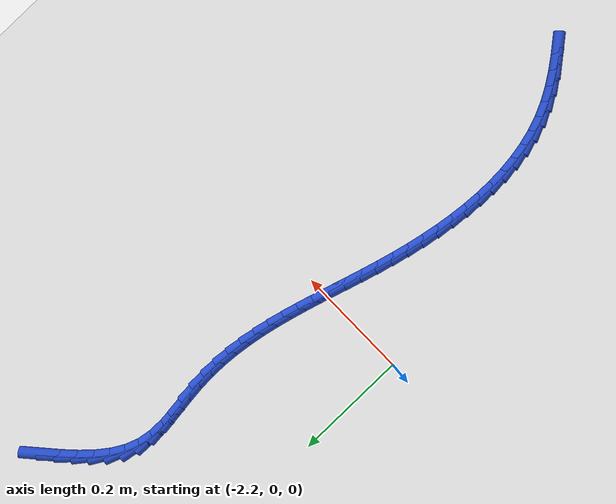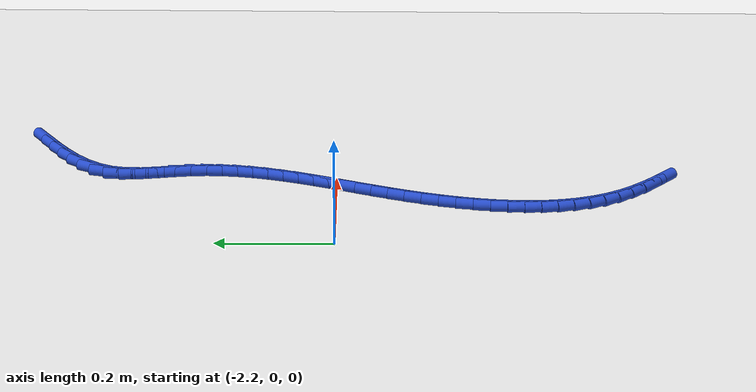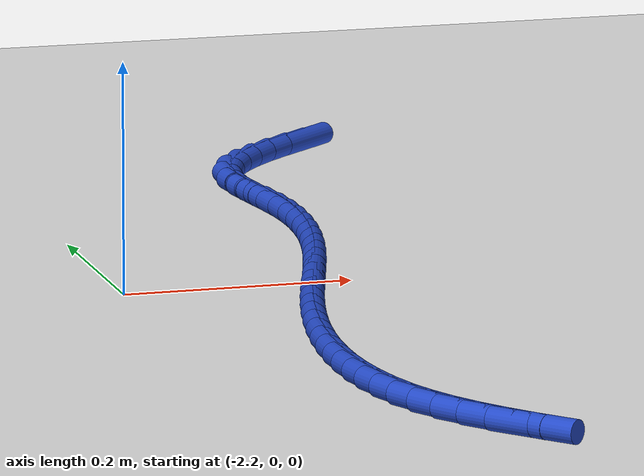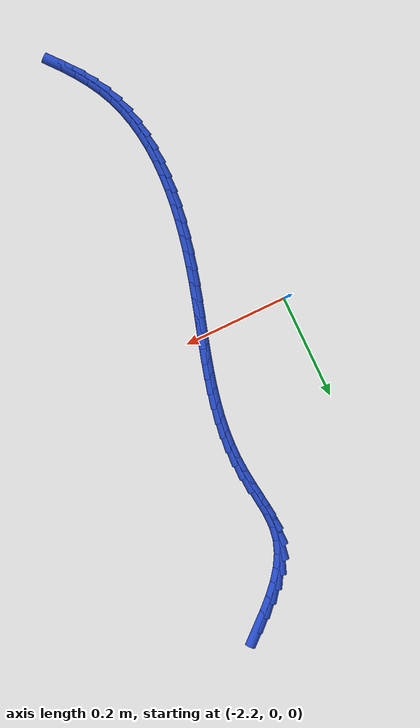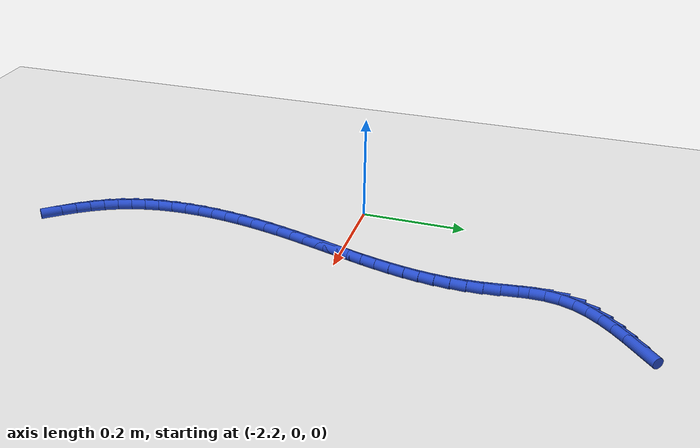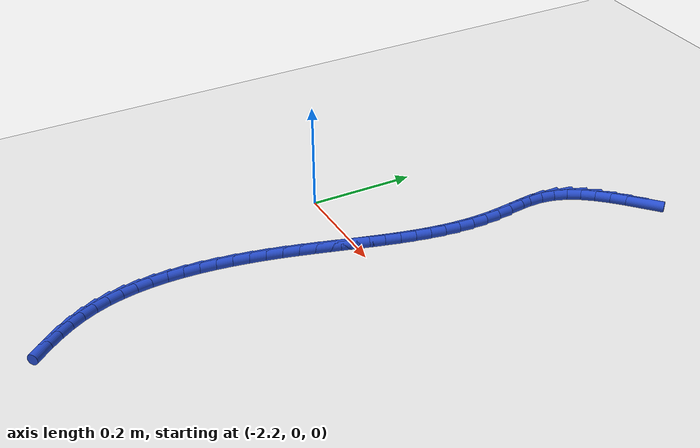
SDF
<sdf version="1.6">
 <world name="default">
  <model name="ground_plane">
   <static>1</static>
   <link name="link">
    <collision name="collision">
     <geometry><plane><normal>0 0 1</normal><size>100 100</size></plane></geometry>
     <surface><friction><ode><mu>100</mu><mu2>50</mu2></ode></friction></surface>
    </collision>
    <visual name="visual">
     <cast_shadows>0</cast_shadows>
     <geometry><plane><normal>0 0 1</normal><size>100 100</size></plane></geometry>
     <material>
      <script><uri>file://media/materials/scripts/gazebo.material</uri><name>Gazebo/WhiteGlow</name></script>
     </material>
    </visual>
   </link>
  </model>
  <model name="line">
   <link name="link_101">
    <pose>-1.896144496180895 0.5289718271721537 0.01 0 1.57 0.7220168724286427</pose>
    <collision name="collision">
     <geometry><cylinder><radius>0.01</radius><length>0.08</length></cylinder></geometry>
    </collision>
    <visual name="visual">
     <material>
      <script><name>Gazebo/Blue</name><uri>file://media/materials/scripts/gazebo.material</uri></script>
     </material>
     <geometry><cylinder><radius>0.01</radius><length>0.08</length></cylinder></geometry>
    </visual>
   </link>
   <link name="link_102">
    <pose>-1.9187975439363938 0.5090225888469819 0.01 0 1.57 0.7618885323626686</pose>
    <collision name="collision">
     <geometry><cylinder><radius>0.01</radius><length>0.08</length></cylinder></geometry>
    </collision>
    <visual name="visual">
     <material>
      <script><name>Gazebo/Blue</name><uri>file://media/materials/scripts/gazebo.material</uri></script>
     </material>
     <geometry><cylinder><radius>0.01</radius><length>0.08</length></cylinder></geometry>
    </visual>
   </link>
   <link name="link_103">
    <pose>-1.9401265800962153 0.488673568966141 0.01 0 1.57 0.8273645722936976</pose>
    <collision name="collision">
     <geometry><cylinder><radius>0.01</radius><length>0.08</length></cylinder></geometry>
    </collision>
    <visual name="visual">
     <material>
      <script><name>Gazebo/Blue</name><uri>file://media/materials/scripts/gazebo.material</uri></script>
     </material>
     <geometry><cylinder><radius>0.01</radius><length>0.08</length></cylinder></geometry>
    </visual>
   </link>
   <link name="link_104">
    <pose>-1.9594284124826273 0.4676796762458361 0.01 0 1.57 0.9226746576085141</pose>
    <collision name="collision">
     <geometry><cylinder><radius>0.01</radius><length>0.08</length></cylinder></geometry>
    </collision>
    <visual name="visual">
     <material>
      <script><name>Gazebo/Blue</name><uri>file://media/materials/scripts/gazebo.material</uri></script>
     </material>
     <geometry><cylinder><radius>0.01</radius><length>0.08</length></cylinder></geometry>
    </visual>
   </link>
   <link name="link_105">
    <pose>-1.975999848917899 0.4457958194022733 0.01 0 1.57 1.0521683185473627</pose>
    <collision name="collision">
     <geometry><cylinder><radius>0.01</radius><length>0.08</length></cylinder></geometry>
    </collision>
    <visual name="visual">
     <material>
      <script><name>Gazebo/Blue</name><uri>file://media/materials/scripts/gazebo.material</uri></script>
     </material>
     <geometry><cylinder><radius>0.01</radius><length>0.08</length></cylinder></geometry>
    </visual>
   </link>
   <link name="link_106">
    <pose>-1.9891376972242967 0.42277690715165667 0.01 0 1.57 1.2173750922639242</pose>
    <collision name="collision">
     <geometry><cylinder><radius>0.01</radius><length>0.08</length></cylinder></geometry>
    </collision>
    <visual name="visual">
     <material>
      <script><name>Gazebo/Blue</name><uri>file://media/materials/scripts/gazebo.material</uri></script>
     </material>
     <geometry><cylinder><radius>0.01</radius><length>0.08</length></cylinder></geometry>
    </visual>
   </link>
   <link name="link_107">
    <pose>-1.9981387652240898 0.3983778482101923 0.01 0 1.57 1.4094934654460418</pose>
    <collision name="collision">
     <geometry><cylinder><radius>0.01</radius><length>0.08</length></cylinder></geometry>
    </collision>
    <visual name="visual">
     <material>
      <script><name>Gazebo/Blue</name><uri>file://media/materials/scripts/gazebo.material</uri></script>
     </material>
     <geometry><cylinder><radius>0.01</radius><length>0.08</length></cylinder></geometry>
    </visual>
   </link>
   <link name="link_108">
    <pose>-2.00236973550002 0.372375756408507 0.01 0 1.57 1.5700115552759744</pose>
    <collision name="collision">
     <geometry><cylinder><radius>0.01</radius><length>0.08</length></cylinder></geometry>
    </collision>
    <visual name="visual">
     <material>
      <script><name>Gazebo/Blue</name><uri>file://media/materials/scripts/gazebo.material</uri></script>
     </material>
     <geometry><cylinder><radius>0.01</radius><length>0.08</length></cylinder></geometry>
    </visual>
   </link>
   <link name="link_109">
    <pose>-2.0023912763688068 0.34492717571281806 0.01 0 1.57 -1.4786694007381977</pose>
    <collision name="collision">
     <geometry><cylinder><radius>0.01</radius><length>0.08</length></cylinder></geometry>
    </collision>
    <visual name="visual">
     <material>
      <script><name>Gazebo/Blue</name><uri>file://media/materials/scripts/gazebo.material</uri></script>
     </material>
     <geometry><cylinder><radius>0.01</radius><length>0.08</length></cylinder></geometry>
    </visual>
   </link>
   <link name="link_110">
    <pose>-1.9997655726006311 0.31650691647470813 0.01 0 1.57 -1.4441821262488481</pose>
    <collision name="collision">
     <geometry><cylinder><radius>0.01</radius><length>0.08</length></cylinder></geometry>
    </collision>
    <visual name="visual">
     <material>
      <script><name>Gazebo/Blue</name><uri>file://media/materials/scripts/gazebo.material</uri></script>
     </material>
     <geometry><cylinder><radius>0.01</radius><length>0.08</length></cylinder></geometry>
    </visual>
   </link>
   <link name="link_111">
    <pose>-1.996085816626342 0.28759964279908207 0.01 0 1.57 -1.4625806967025232</pose>
    <collision name="collision">
     <geometry><cylinder><radius>0.01</radius><length>0.08</length></cylinder></geometry>
    </collision>
    <visual name="visual">
     <material>
      <script><name>Gazebo/Blue</name><uri>file://media/materials/scripts/gazebo.material</uri></script>
     </material>
     <geometry><cylinder><radius>0.01</radius><length>0.08</length></cylinder></geometry>
    </visual>
   </link>
   <link name="link_112">
    <pose>-1.9929450694700788 0.2586899784878984 0.01 0 1.57 -1.5225483574651293</pose>
    <collision name="collision">
     <geometry><cylinder><radius>0.01</radius><length>0.08</length></cylinder></geometry>
    </collision>
    <visual name="visual">
     <material>
      <script><name>Gazebo/Blue</name><uri>file://media/materials/scripts/gazebo.material</uri></script>
     </material>
     <geometry><cylinder><radius>0.01</radius><length>0.08</length></cylinder></geometry>
    </visual>
   </link>
   <link name="link_113">
    <pose>-1.991566967444918 0.23014924335575432 0.01 0 1.57 1.5554933771821096</pose>
    <collision name="collision">
     <geometry><cylinder><radius>0.01</radius><length>0.08</length></cylinder></geometry>
    </collision>
    <visual name="visual">
     <material>
      <script><name>Gazebo/Blue</name><uri>file://media/materials/scripts/gazebo.material</uri></script>
     </material>
     <geometry><cylinder><radius>0.01</radius><length>0.08</length></cylinder></geometry>
    </visual>
   </link>
   <link name="link_114">
    <pose>-1.9919979556431835 0.2019877081179235 0.01 0 1.57 1.4972125847674065</pose>
    <collision name="collision">
     <geometry><cylinder><radius>0.01</radius><length>0.08</length></cylinder></geometry>
    </collision>
    <visual name="visual">
     <material>
      <script><name>Gazebo/Blue</name><uri>file://media/materials/scripts/gazebo.material</uri></script>
     </material>
     <geometry><cylinder><radius>0.01</radius><length>0.08</length></cylinder></geometry>
    </visual>
   </link>
   <link name="link_115">
    <pose>-1.994050514211068 0.17414388553601304 0.01 0 1.57 1.44507963513674</pose>
    <collision name="collision">
     <geometry><cylinder><radius>0.01</radius><length>0.08</length></cylinder></geometry>
    </collision>
    <visual name="visual">
     <material>
      <script><name>Gazebo/Blue</name><uri>file://media/materials/scripts/gazebo.material</uri></script>
     </material>
     <geometry><cylinder><radius>0.01</radius><length>0.08</length></cylinder></geometry>
    </visual>
   </link>
   <link name="link_116">
    <pose>-1.99753712329476 0.14655628837162982 0.01 0 1.57 1.3996983568540962</pose>
    <collision name="collision">
     <geometry><cylinder><radius>0.01</radius><length>0.08</length></cylinder></geometry>
    </collision>
    <visual name="visual">
     <material>
      <script><name>Gazebo/Blue</name><uri>file://media/materials/scripts/gazebo.material</uri></script>
     </material>
     <geometry><cylinder><radius>0.01</radius><length>0.08</length></cylinder></geometry>
    </visual>
   </link>
   <link name="link_117">
    <pose>-2.0022702630404523 0.119163429386381 0.01 0 1.57 1.3614290506403983</pose>
    <collision name="collision">
     <geometry><cylinder><radius>0.01</radius><length>0.08</length></cylinder></geometry>
    </collision>
    <visual name="visual">
     <material>
      <script><name>Gazebo/Blue</name><uri>file://media/materials/scripts/gazebo.material</uri></script>
     </material>
     <geometry><cylinder><radius>0.01</radius><length>0.08</length></cylinder></geometry>
    </visual>
   </link>
   <link name="link_118">
    <pose>-2.0080624135943346 0.09190382134187361 0.01 0 1.57 1.3304381586374678</pose>
    <collision name="collision">
     <geometry><cylinder><radius>0.01</radius><length>0.08</length></cylinder></geometry>
    </collision>
    <visual name="visual">
     <material>
      <script><name>Gazebo/Blue</name><uri>file://media/materials/scripts/gazebo.material</uri></script>
     </material>
     <geometry><cylinder><radius>0.01</radius><length>0.08</length></cylinder></geometry>
    </visual>
   </link>
   <link name="link_119">
    <pose>-2.014726055102598 0.06471597699971472 0.01 0 1.57 1.3067529145055927</pose>
    <collision name="collision">
     <geometry><cylinder><radius>0.01</radius><length>0.08</length></cylinder></geometry>
    </collision>
    <visual name="visual">
     <material>
      <script><name>Gazebo/Blue</name><uri>file://media/materials/scripts/gazebo.material</uri></script>
     </material>
     <geometry><cylinder><radius>0.01</radius><length>0.08</length></cylinder></geometry>
    </visual>
   </link>
   <link name="link_120">
    <pose>-2.0220736677114326 0.037538409121511705 0.01 0 1.57 1.2903109588962494</pose>
    <collision name="collision">
     <geometry><cylinder><radius>0.01</radius><length>0.08</length></cylinder></geometry>
    </collision>
    <visual name="visual">
     <material>
      <script><name>Gazebo/Blue</name><uri>file://media/materials/scripts/gazebo.material</uri></script>
     </material>
     <geometry><cylinder><radius>0.01</radius><length>0.08</length></cylinder></geometry>
    </visual>
   </link>
   <link name="link_121">
    <pose>-2.0299177315670307 0.010309630468870935 0.01 0 1.57 1.280999554567115</pose>
    <collision name="collision">
     <geometry><cylinder><radius>0.01</radius><length>0.08</length></cylinder></geometry>
    </collision>
    <visual name="visual">
     <material>
      <script><name>Gazebo/Blue</name><uri>file://media/materials/scripts/gazebo.material</uri></script>
     </material>
     <geometry><cylinder><radius>0.01</radius><length>0.08</length></cylinder></geometry>
    </visual>
   </link>
   <link name="link_122">
    <pose>-2.0380707268155813 -0.017031846196600246 0.01 0 1.57 1.2786825478382515</pose>
    <collision name="collision">
     <geometry><cylinder><radius>0.01</radius><length>0.08</length></cylinder></geometry>
    </collision>
    <visual name="visual">
     <material>
      <script><name>Gazebo/Blue</name><uri>file://media/materials/scripts/gazebo.material</uri></script>
     </material>
     <geometry><cylinder><radius>0.01</radius><length>0.08</length></cylinder></geometry>
    </visual>
   </link>
   <link name="link_123">
    <pose>-2.046345133603277 -0.04454750811329473 0.01 0 1.57 1.2832152834538741</pose>
    <collision name="collision">
     <geometry><cylinder><radius>0.01</radius><length>0.08</length></cylinder></geometry>
    </collision>
    <visual name="visual">
     <material>
      <script><name>Gazebo/Blue</name><uri>file://media/materials/scripts/gazebo.material</uri></script>
     </material>
     <geometry><cylinder><radius>0.01</radius><length>0.08</length></cylinder></geometry>
    </visual>
   </link>
   <link name="link_124">
    <pose>-2.0545534320763075 -0.0722988425196055 0.01 0 1.57 1.2944486016120647</pose>
    <collision name="collision">
     <geometry><cylinder><radius>0.01</radius><length>0.08</length></cylinder></geometry>
    </collision>
    <visual name="visual">
     <material>
      <script><name>Gazebo/Blue</name><uri>file://media/materials/scripts/gazebo.material</uri></script>
     </material>
     <geometry><cylinder><radius>0.01</radius><length>0.08</length></cylinder></geometry>
    </visual>
   </link>
   <link name="link_125">
    <pose>-2.0625081023808645 -0.10034733665392552 0.01 0 1.57 1.3122225340304439</pose>
    <collision name="collision">
     <geometry><cylinder><radius>0.01</radius><length>0.08</length></cylinder></geometry>
    </collision>
    <visual name="visual">
     <material>
      <script><name>Gazebo/Blue</name><uri>file://media/materials/scripts/gazebo.material</uri></script>
     </material>
     <geometry><cylinder><radius>0.01</radius><length>0.08</length></cylinder></geometry>
    </visual>
   </link>
   <link name="link_126">
    <pose>-2.0700216370159072 -0.12875443358114538 0.01 0 1.57 1.3356727353925217</pose>
    <collision name="collision">
     <geometry><cylinder><radius>0.01</radius><length>0.08</length></cylinder></geometry>
    </collision>
    <visual name="visual">
     <material>
      <script><name>Gazebo/Blue</name><uri>file://media/materials/scripts/gazebo.material</uri></script>
     </material>
     <geometry><cylinder><radius>0.01</radius><length>0.08</length></cylinder></geometry>
    </visual>
   </link>
   <link name="link_127">
    <pose>-2.0769177190653947 -0.15754155883871152 0.01 0 1.57 1.36286786554708</pose>
    <collision name="collision">
     <geometry><cylinder><radius>0.01</radius><length>0.08</length></cylinder></geometry>
    </collision>
    <visual name="visual">
     <material>
      <script><name>Gazebo/Blue</name><uri>file://media/materials/scripts/gazebo.material</uri></script>
     </material>
     <geometry><cylinder><radius>0.01</radius><length>0.08</length></cylinder></geometry>
    </visual>
   </link>
   <link name="link_128">
    <pose>-2.083051852393901 -0.18661634686538028 0.01 0 1.57 1.3937530929213318</pose>
    <collision name="collision">
     <geometry><cylinder><radius>0.01</radius><length>0.08</length></cylinder></geometry>
    </collision>
    <visual name="visual">
     <material>
      <script><name>Gazebo/Blue</name><uri>file://media/materials/scripts/gazebo.material</uri></script>
     </material>
     <geometry><cylinder><radius>0.01</radius><length>0.08</length></cylinder></geometry>
    </visual>
   </link>
   <link name="link_129">
    <pose>-2.0882851588664377 -0.21586634213260023 0.01 0 1.57 1.428696469548353</pose>
    <collision name="collision">
     <geometry><cylinder><radius>0.01</radius><length>0.08</length></cylinder></geometry>
    </collision>
    <visual name="visual">
     <material>
      <script><name>Gazebo/Blue</name><uri>file://media/materials/scripts/gazebo.material</uri></script>
     </material>
     <geometry><cylinder><radius>0.01</radius><length>0.08</length></cylinder></geometry>
    </visual>
   </link>
   <link name="link_130">
    <pose>-2.092478760348018 -0.24517908911182001 0.01 0 1.57 1.4681269931462237</pose>
    <collision name="collision">
     <geometry><cylinder><radius>0.01</radius><length>0.08</length></cylinder></geometry>
    </collision>
    <visual name="visual">
     <material>
      <script><name>Gazebo/Blue</name><uri>file://media/materials/scripts/gazebo.material</uri></script>
     </material>
     <geometry><cylinder><radius>0.01</radius><length>0.08</length></cylinder></geometry>
    </visual>
   </link>
   <link name="link_131">
    <pose>-2.0954937787036547 -0.2744421322744883 0.01 0 1.57 1.5125288341439134</pose>
    <collision name="collision">
     <geometry><cylinder><radius>0.01</radius><length>0.08</length></cylinder></geometry>
    </collision>
    <visual name="visual">
     <material>
      <script><name>Gazebo/Blue</name><uri>file://media/materials/scripts/gazebo.material</uri></script>
     </material>
     <geometry><cylinder><radius>0.01</radius><length>0.08</length></cylinder></geometry>
    </visual>
   </link>
   <link name="link_132">
    <pose>-2.0971913357983603 -0.3035430160920538 0.01 0 1.57 1.5624285401340328</pose>
    <collision name="collision">
     <geometry><cylinder><radius>0.01</radius><length>0.08</length></cylinder></geometry>
    </collision>
    <visual name="visual">
     <material>
      <script><name>Gazebo/Blue</name><uri>file://media/materials/scripts/gazebo.material</uri></script>
     </material>
     <geometry><cylinder><radius>0.01</radius><length>0.08</length></cylinder></geometry>
    </visual>
   </link>
   <link name="link_133">
    <pose>-2.097432553497147 -0.3323692850359652 0.01 0 1.57 -1.5232219142389265</pose>
    <collision name="collision">
     <geometry><cylinder><radius>0.01</radius><length>0.08</length></cylinder></geometry>
    </collision>
    <visual name="visual">
     <material>
      <script><name>Gazebo/Blue</name><uri>file://media/materials/scripts/gazebo.material</uri></script>
     </material>
     <geometry><cylinder><radius>0.01</radius><length>0.08</length></cylinder></geometry>
    </visual>
   </link>
   <link name="link_134">
    <pose>-2.096078553665027 -0.36080848357767087 0.01 0 1.57 -1.46071587211263</pose>
    <collision name="collision">
     <geometry><cylinder><radius>0.01</radius><length>0.08</length></cylinder></geometry>
    </collision>
    <visual name="visual">
     <material>
      <script><name>Gazebo/Blue</name><uri>file://media/materials/scripts/gazebo.material</uri></script>
     </material>
     <geometry><cylinder><radius>0.01</radius><length>0.08</length></cylinder></geometry>
    </visual>
   </link>
   <link name="link_135">
    <pose>-2.0929904581670136 -0.3887481561886197 0.01 0 1.57 -1.3912121114224356</pose>
    <collision name="collision">
     <geometry><cylinder><radius>0.01</radius><length>0.08</length></cylinder></geometry>
    </collision>
    <visual name="visual">
     <material>
      <script><name>Gazebo/Blue</name><uri>file://media/materials/scripts/gazebo.material</uri></script>
     </material>
     <geometry><cylinder><radius>0.01</radius><length>0.08</length></cylinder></geometry>
    </visual>
   </link>
   <link name="link_136">
    <pose>-2.088029388868119 -0.41607584734026026 0.01 0 1.57 -1.3144549202081728</pose>
    <collision name="collision">
     <geometry><cylinder><radius>0.01</radius><length>0.08</length></cylinder></geometry>
    </collision>
    <visual name="visual">
     <material>
      <script><name>Gazebo/Blue</name><uri>file://media/materials/scripts/gazebo.material</uri></script>
     </material>
     <geometry><cylinder><radius>0.01</radius><length>0.08</length></cylinder></geometry>
    </visual>
   </link>
   <link name="link_137">
    <pose>-2.0810564676333554 -0.4426791015040412 0.01 0 1.57 -1.2304811215204532</pose>
    <collision name="collision">
     <geometry><cylinder><radius>0.01</radius><length>0.08</length></cylinder></geometry>
    </collision>
    <visual name="visual">
     <material>
      <script><name>Gazebo/Blue</name><uri>file://media/materials/scripts/gazebo.material</uri></script>
     </material>
     <geometry><cylinder><radius>0.01</radius><length>0.08</length></cylinder></geometry>
    </visual>
   </link>
   <link name="link_138">
    <pose>-2.071932816327736 -0.46844546315141117 0.01 0 1.57 -1.1403641343012199</pose>
    <collision name="collision">
     <geometry><cylinder><radius>0.01</radius><length>0.08</length></cylinder></geometry>
    </collision>
    <visual name="visual">
     <material>
      <script><name>Gazebo/Blue</name><uri>file://media/materials/scripts/gazebo.material</uri></script>
     </material>
     <geometry><cylinder><radius>0.01</radius><length>0.08</length></cylinder></geometry>
    </visual>
   </link>
   <link name="link_139">
    <pose>-2.06053450695933 -0.4932705807691251 0.01 0 1.57 -1.0549417686300302</pose>
    <collision name="collision">
     <geometry><cylinder><radius>0.01</radius><length>0.08</length></cylinder></geometry>
    </collision>
    <visual name="visual">
     <material>
      <script><name>Gazebo/Blue</name><uri>file://media/materials/scripts/gazebo.material</uri></script>
     </material>
     <geometry><cylinder><radius>0.01</radius><length>0.08</length></cylinder></geometry>
    </visual>
   </link>
   <link name="link_140">
    <pose>-2.0469764323113124 -0.5171795602818756 0.01 0 1.57 -0.982901498523665</pose>
    <collision name="collision">
     <geometry><cylinder><radius>0.01</radius><length>0.08</length></cylinder></geometry>
    </collision>
    <visual name="visual">
     <material>
      <script><name>Gazebo/Blue</name><uri>file://media/materials/scripts/gazebo.material</uri></script>
     </material>
     <geometry><cylinder><radius>0.01</radius><length>0.08</length></cylinder></geometry>
    </visual>
   </link>
   <link name="link_141">
    <pose>-2.031565384754738 -0.5403015305117638 0.01 0 1.57 -0.9244092743525103</pose>
    <collision name="collision">
     <geometry><cylinder><radius>0.01</radius><length>0.08</length></cylinder></geometry>
    </collision>
    <visual name="visual">
     <material>
      <script><name>Gazebo/Blue</name><uri>file://media/materials/scripts/gazebo.material</uri></script>
     </material>
     <geometry><cylinder><radius>0.01</radius><length>0.08</length></cylinder></geometry>
    </visual>
   </link>
   <link name="link_142">
    <pose>-2.014613581586045 -0.5627685609670222 0.01 0 1.57 -0.8789279784652331</pose>
    <collision name="collision">
     <geometry><cylinder><radius>0.01</radius><length>0.08</length></cylinder></geometry>
    </collision>
    <visual name="visual">
     <material>
      <script><name>Gazebo/Blue</name><uri>file://media/materials/scripts/gazebo.material</uri></script>
     </material>
     <geometry><cylinder><radius>0.01</radius><length>0.08</length></cylinder></geometry>
    </visual>
   </link>
  </model>
 </world>
</sdf>
